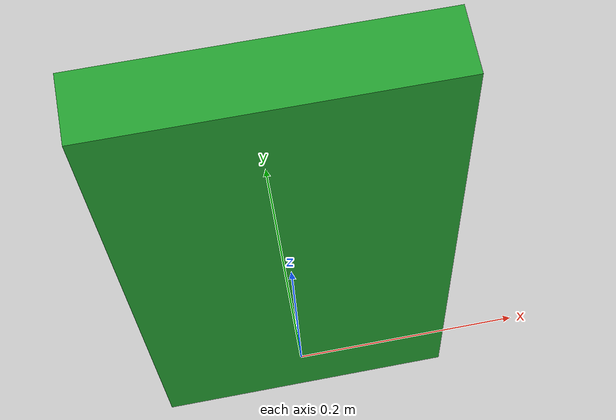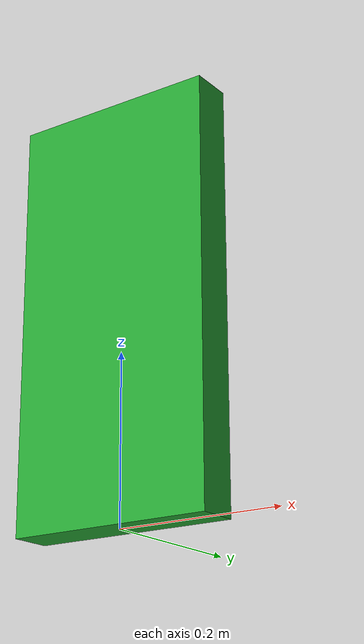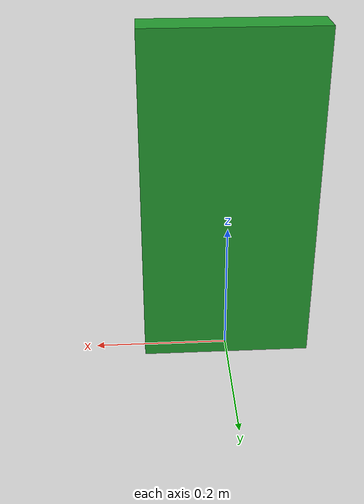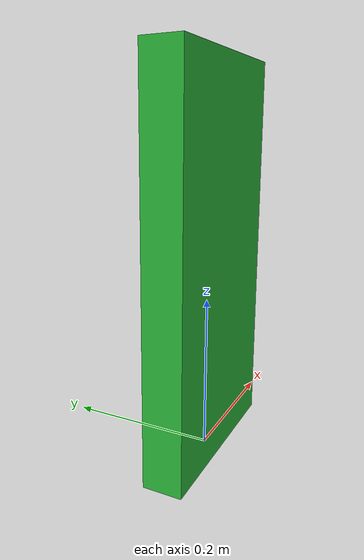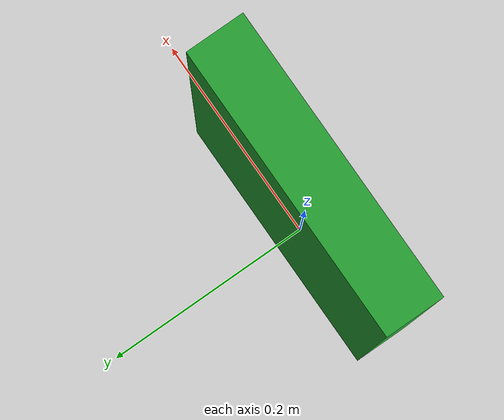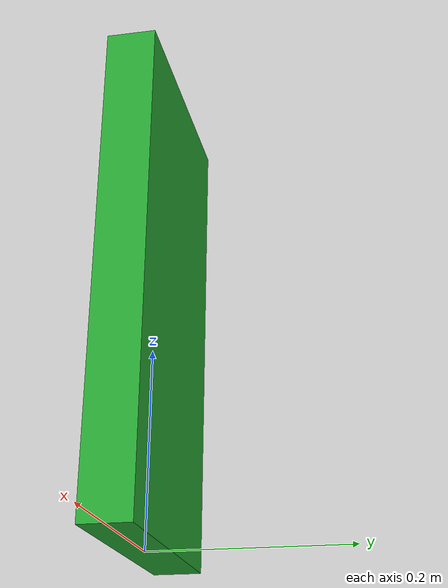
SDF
<?xml version="1.0" ?>
<sdf version="1.6">
  <model name="traffic_light_green">
    <pose>0 0 0.25 0 0 0</pose>
    <link name="box">
      <pose>0 0 0 0 0 0</pose>
      <collision name="collision">
        <geometry>
          <box>
            <size>0.25 0.05 0.5</size>
          </box>
        </geometry>
      </collision>
      <visual name="visual">
        <geometry>
          <box>
            <size>0.25 0.05 0.5</size>
          </box>
        </geometry>
        <material>
          <script>
            <uri>model://traffic_light_green/materials/scripts</uri>
            <uri>model://traffic_light_green/materials/textures</uri>
            <name>traffic_light_green</name>
          </script>
        </material>
      </visual>
    </link>
  </model>
</sdf>
